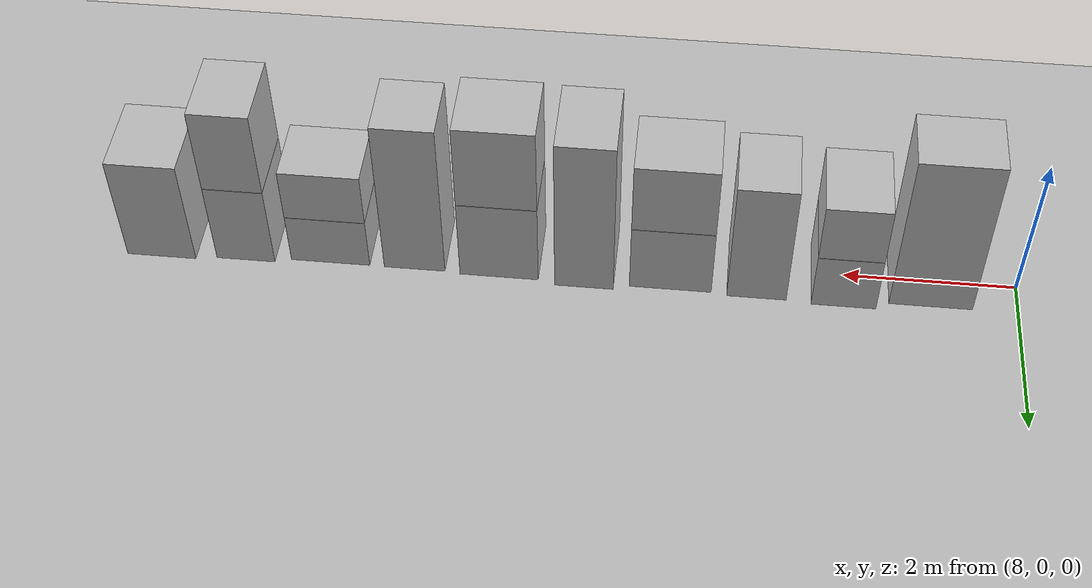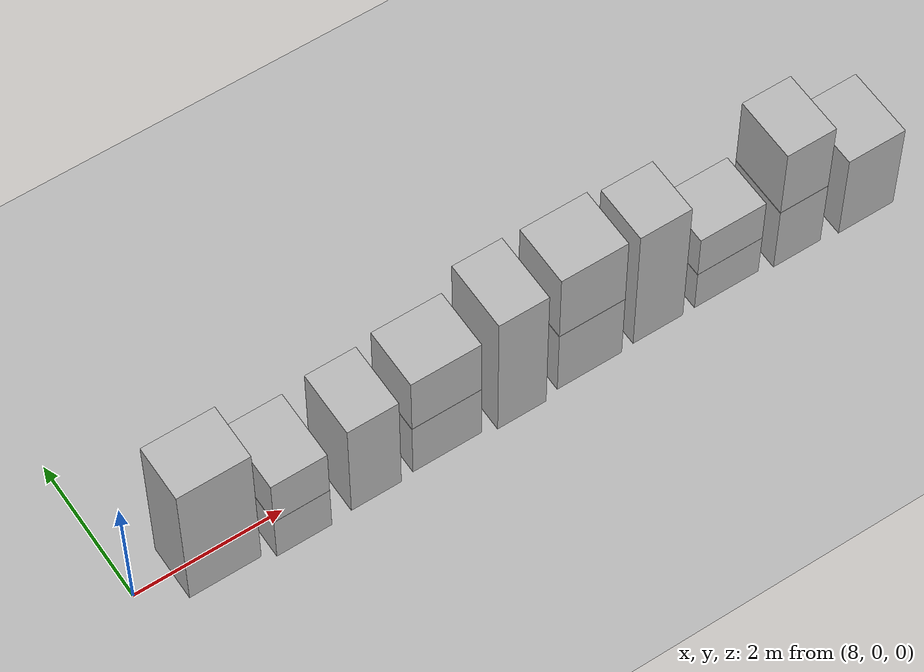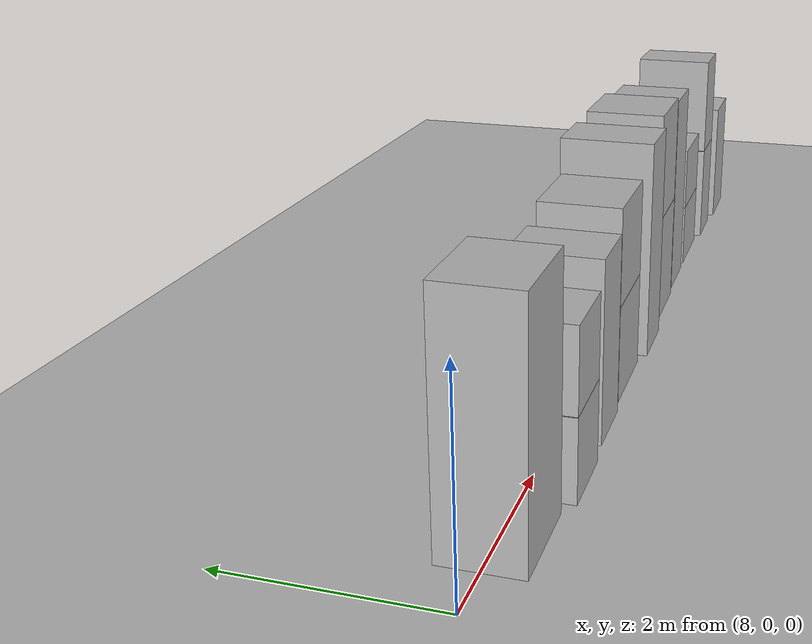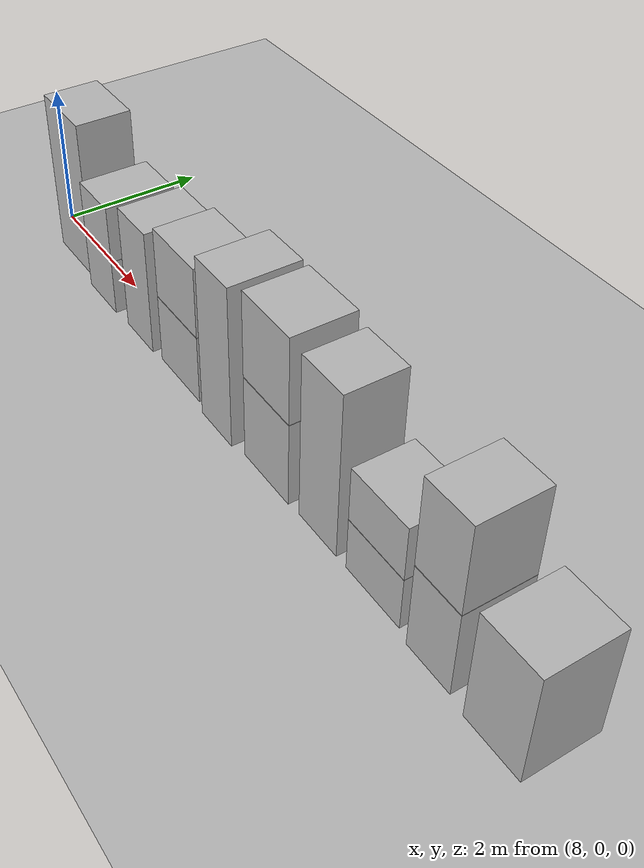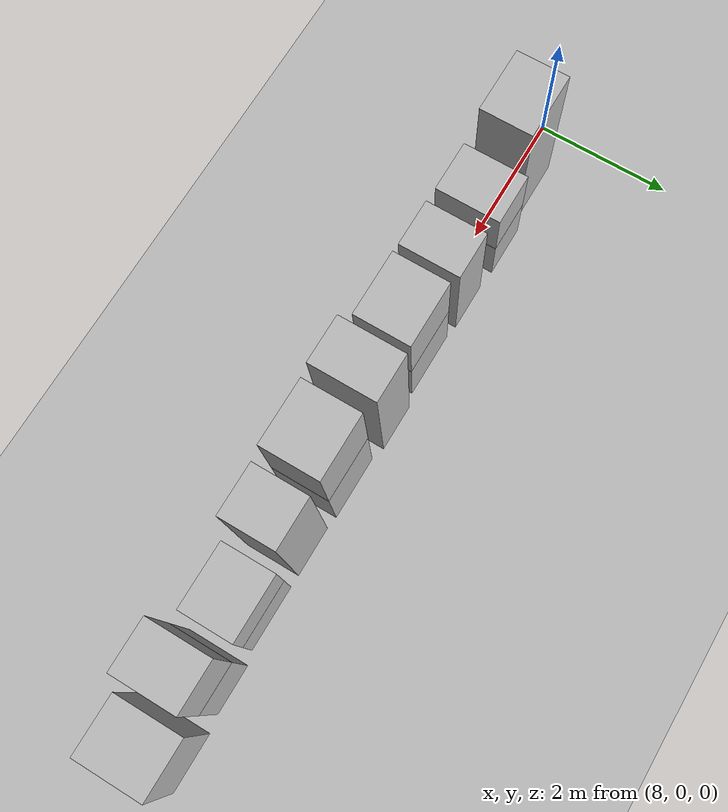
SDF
<sdf version="1.5">
 <world name="default">
  <model name="ground_plane">
   <static>true</static>
   <link name="link">
    <collision name="collision">
     <geometry><plane><normal>0 0 1</normal><size>250 250</size></plane></geometry>
     <surface><friction><ode><mu>1</mu><mu2>1</mu2></ode></friction></surface>
    </collision>
    <visual name="grass">
     <cast_shadows>false</cast_shadows>
     <geometry><mesh><uri>file://grass_plane/meshes/grass_plane.dae</uri></mesh></geometry>
    </visual>
   </link>
  </model>
  <model name="Cardboard_box_9">
   <link name="link_0">
    <pose>9 0 0 0 0 0</pose>
    <inertial>
     <mass>1</mass>
     <inertia>
      <ixx>0.166667</ixx>
      <ixy>0</ixy>
      <ixz>0</ixz>
      <iyy>0.166667</iyy>
      <iyz>0</iyz>
      <izz>0.166667</izz>
     </inertia>
    </inertial>
    <collision name="collision">
     <geometry>
      <mesh>
       <uri>model://Cardboard_box/meshes/cardboard_box.dae</uri>
       <scale>2.41177727035 1.9046140547 5.80288688245</scale>
      </mesh>
     </geometry>
    </collision>
    <visual name="visual">
     <geometry>
      <mesh>
       <uri>model://Cardboard_box/meshes/cardboard_box.dae</uri>
       <scale>2.41177727035 1.9046140547 5.80288688245</scale>
      </mesh>
     </geometry>
    </visual>
   </link>
   <static>1</static>
  </model>
  <model name="Cardboard_box_10">
   <link name="link_0">
    <pose>10 0 0 0 0 0</pose>
    <inertial>
     <mass>1</mass>
     <inertia>
      <ixx>0.166667</ixx>
      <ixy>0</ixy>
      <ixz>0</ixz>
      <iyy>0.166667</iyy>
      <iyz>0</iyz>
      <izz>0.166667</izz>
     </inertia>
    </inertial>
    <collision name="collision">
     <geometry>
      <mesh>
       <uri>model://Cardboard_box/meshes/cardboard_box.dae</uri>
       <scale>1.87477308353 2.39111994629 2.01380532399</scale>
      </mesh>
     </geometry>
    </collision>
    <visual name="visual">
     <geometry>
      <mesh>
       <uri>model://Cardboard_box/meshes/cardboard_box.dae</uri>
       <scale>1.87477308353 2.39111994629 2.01380532399</scale>
      </mesh>
     </geometry>
    </visual>
   </link>
   <static>1</static>
  </model>
  <model name="Cardboard_box_top_10">
   <link name="link_0">
    <pose>10 0 0.805522129596 0 0 0</pose>
    <inertial>
     <mass>1</mass>
     <inertia>
      <ixx>0.166667</ixx>
      <ixy>0</ixy>
      <ixz>0</ixz>
      <iyy>0.166667</iyy>
      <iyz>0</iyz>
      <izz>0.166667</izz>
     </inertia>
    </inertial>
    <collision name="collision">
     <geometry>
      <mesh>
       <uri>model://Cardboard_box/meshes/cardboard_box.dae</uri>
       <scale>1.87477308353 2.39111994629 2.01380532399</scale>
      </mesh>
     </geometry>
    </collision>
    <visual name="visual">
     <geometry>
      <mesh>
       <uri>model://Cardboard_box/meshes/cardboard_box.dae</uri>
       <scale>1.87477308353 2.39111994629 2.01380532399</scale>
      </mesh>
     </geometry>
    </visual>
   </link>
   <static>1</static>
  </model>
  <model name="Cardboard_box_11">
   <link name="link_0">
    <pose>11 0 0 0 0 0</pose>
    <inertial>
     <mass>1</mass>
     <inertia>
      <ixx>0.166667</ixx>
      <ixy>0</ixy>
      <ixz>0</ixz>
      <iyy>0.166667</iyy>
      <iyz>0</iyz>
      <izz>0.166667</izz>
     </inertia>
    </inertial>
    <collision name="collision">
     <geometry>
      <mesh>
       <uri>model://Cardboard_box/meshes/cardboard_box.dae</uri>
       <scale>1.72870701162 2.23671590152 4.48120869335</scale>
      </mesh>
     </geometry>
    </collision>
    <visual name="visual">
     <geometry>
      <mesh>
       <uri>model://Cardboard_box/meshes/cardboard_box.dae</uri>
       <scale>1.72870701162 2.23671590152 4.48120869335</scale>
      </mesh>
     </geometry>
    </visual>
   </link>
   <static>1</static>
  </model>
  <model name="Cardboard_box_12">
   <link name="link_0">
    <pose>12 0 0 0 0 0</pose>
    <inertial>
     <mass>1</mass>
     <inertia>
      <ixx>0.166667</ixx>
      <ixy>0</ixy>
      <ixz>0</ixz>
      <iyy>0.166667</iyy>
      <iyz>0</iyz>
      <izz>0.166667</izz>
     </inertia>
    </inertial>
    <collision name="collision">
     <geometry>
      <mesh>
       <uri>model://Cardboard_box/meshes/cardboard_box.dae</uri>
       <scale>2.39689287045 2.06885431104 2.46151055698</scale>
      </mesh>
     </geometry>
    </collision>
    <visual name="visual">
     <geometry>
      <mesh>
       <uri>model://Cardboard_box/meshes/cardboard_box.dae</uri>
       <scale>2.39689287045 2.06885431104 2.46151055698</scale>
      </mesh>
     </geometry>
    </visual>
   </link>
   <static>1</static>
  </model>
  <model name="Cardboard_box_top_12">
   <link name="link_0">
    <pose>12 0 0.984604222791 0 0 0</pose>
    <inertial>
     <mass>1</mass>
     <inertia>
      <ixx>0.166667</ixx>
      <ixy>0</ixy>
      <ixz>0</ixz>
      <iyy>0.166667</iyy>
      <iyz>0</iyz>
      <izz>0.166667</izz>
     </inertia>
    </inertial>
    <collision name="collision">
     <geometry>
      <mesh>
       <uri>model://Cardboard_box/meshes/cardboard_box.dae</uri>
       <scale>2.39689287045 2.06885431104 2.46151055698</scale>
      </mesh>
     </geometry>
    </collision>
    <visual name="visual">
     <geometry>
      <mesh>
       <uri>model://Cardboard_box/meshes/cardboard_box.dae</uri>
       <scale>2.39689287045 2.06885431104 2.46151055698</scale>
      </mesh>
     </geometry>
    </visual>
   </link>
   <static>1</static>
  </model>
  <model name="Cardboard_box_13">
   <link name="link_0">
    <pose>13 0 0 0 0 0</pose>
    <inertial>
     <mass>1</mass>
     <inertia>
      <ixx>0.166667</ixx>
      <ixy>0</ixy>
      <ixz>0</ixz>
      <iyy>0.166667</iyy>
      <iyz>0</iyz>
      <izz>0.166667</izz>
     </inertia>
    </inertial>
    <collision name="collision">
     <geometry>
      <mesh>
       <uri>model://Cardboard_box/meshes/cardboard_box.dae</uri>
       <scale>1.72068681394 2.40428362336 5.74207387843</scale>
      </mesh>
     </geometry>
    </collision>
    <visual name="visual">
     <geometry>
      <mesh>
       <uri>model://Cardboard_box/meshes/cardboard_box.dae</uri>
       <scale>1.72068681394 2.40428362336 5.74207387843</scale>
      </mesh>
     </geometry>
    </visual>
   </link>
   <static>1</static>
  </model>
  <model name="Cardboard_box_14">
   <link name="link_0">
    <pose>14 0 0 0 0 0</pose>
    <inertial>
     <mass>1</mass>
     <inertia>
      <ixx>0.166667</ixx>
      <ixy>0</ixy>
      <ixz>0</ixz>
      <iyy>0.166667</iyy>
      <iyz>0</iyz>
      <izz>0.166667</izz>
     </inertia>
    </inertial>
    <collision name="collision">
     <geometry>
      <mesh>
       <uri>model://Cardboard_box/meshes/cardboard_box.dae</uri>
       <scale>2.31721867758 2.10245198145 2.95686316914</scale>
      </mesh>
     </geometry>
    </collision>
    <visual name="visual">
     <geometry>
      <mesh>
       <uri>model://Cardboard_box/meshes/cardboard_box.dae</uri>
       <scale>2.31721867758 2.10245198145 2.95686316914</scale>
      </mesh>
     </geometry>
    </visual>
   </link>
   <static>1</static>
  </model>
  <model name="Cardboard_box_top_14">
   <link name="link_0">
    <pose>14 0 1.18274526766 0 0 0</pose>
    <inertial>
     <mass>1</mass>
     <inertia>
      <ixx>0.166667</ixx>
      <ixy>0</ixy>
      <ixz>0</ixz>
      <iyy>0.166667</iyy>
      <iyz>0</iyz>
      <izz>0.166667</izz>
     </inertia>
    </inertial>
    <collision name="collision">
     <geometry>
      <mesh>
       <uri>model://Cardboard_box/meshes/cardboard_box.dae</uri>
       <scale>2.31721867758 2.10245198145 2.95686316914</scale>
      </mesh>
     </geometry>
    </collision>
    <visual name="visual">
     <geometry>
      <mesh>
       <uri>model://Cardboard_box/meshes/cardboard_box.dae</uri>
       <scale>2.31721867758 2.10245198145 2.95686316914</scale>
      </mesh>
     </geometry>
    </visual>
   </link>
   <static>1</static>
  </model>
  <model name="Cardboard_box_15">
   <link name="link_0">
    <pose>15 0 0 0 0 0</pose>
    <inertial>
     <mass>1</mass>
     <inertia>
      <ixx>0.166667</ixx>
      <ixy>0</ixy>
      <ixz>0</ixz>
      <iyy>0.166667</iyy>
      <iyz>0</iyz>
      <izz>0.166667</izz>
     </inertia>
    </inertial>
    <collision name="collision">
     <geometry>
      <mesh>
       <uri>model://Cardboard_box/meshes/cardboard_box.dae</uri>
       <scale>1.81143180354 1.9829154614 5.72567080923</scale>
      </mesh>
     </geometry>
    </collision>
    <visual name="visual">
     <geometry>
      <mesh>
       <uri>model://Cardboard_box/meshes/cardboard_box.dae</uri>
       <scale>1.81143180354 1.9829154614 5.72567080923</scale>
      </mesh>
     </geometry>
    </visual>
   </link>
   <static>1</static>
  </model>
  <model name="Cardboard_box_16">
   <link name="link_0">
    <pose>16 0 0 0 0 0</pose>
    <inertial>
     <mass>1</mass>
     <inertia>
      <ixx>0.166667</ixx>
      <ixy>0</ixy>
      <ixz>0</ixz>
      <iyy>0.166667</iyy>
      <iyz>0</iyz>
      <izz>0.166667</izz>
     </inertia>
    </inertial>
    <collision name="collision">
     <geometry>
      <mesh>
       <uri>model://Cardboard_box/meshes/cardboard_box.dae</uri>
       <scale>2.35221261662 1.96231627657 1.82707683296</scale>
      </mesh>
     </geometry>
    </collision>
    <visual name="visual">
     <geometry>
      <mesh>
       <uri>model://Cardboard_box/meshes/cardboard_box.dae</uri>
       <scale>2.35221261662 1.96231627657 1.82707683296</scale>
      </mesh>
     </geometry>
    </visual>
   </link>
   <static>1</static>
  </model>
  <model name="Cardboard_box_top_16">
   <link name="link_0">
    <pose>16 0 0.730830733183 0 0 0</pose>
    <inertial>
     <mass>1</mass>
     <inertia>
      <ixx>0.166667</ixx>
      <ixy>0</ixy>
      <ixz>0</ixz>
      <iyy>0.166667</iyy>
      <iyz>0</iyz>
      <izz>0.166667</izz>
     </inertia>
    </inertial>
    <collision name="collision">
     <geometry>
      <mesh>
       <uri>model://Cardboard_box/meshes/cardboard_box.dae</uri>
       <scale>2.35221261662 1.96231627657 1.82707683296</scale>
      </mesh>
     </geometry>
    </collision>
    <visual name="visual">
     <geometry>
      <mesh>
       <uri>model://Cardboard_box/meshes/cardboard_box.dae</uri>
       <scale>2.35221261662 1.96231627657 1.82707683296</scale>
      </mesh>
     </geometry>
    </visual>
   </link>
   <static>1</static>
  </model>
  <model name="Cardboard_box_17">
   <link name="link_0">
    <pose>17 0 0 0 0 0</pose>
    <inertial>
     <mass>1</mass>
     <inertia>
      <ixx>0.166667</ixx>
      <ixy>0</ixy>
      <ixz>0</ixz>
      <iyy>0.166667</iyy>
      <iyz>0</iyz>
      <izz>0.166667</izz>
     </inertia>
    </inertial>
    <collision name="collision">
     <geometry>
      <mesh>
       <uri>model://Cardboard_box/meshes/cardboard_box.dae</uri>
       <scale>1.74772383043 2.24330012728 2.94271087227</scale>
      </mesh>
     </geometry>
    </collision>
    <visual name="visual">
     <geometry>
      <mesh>
       <uri>model://Cardboard_box/meshes/cardboard_box.dae</uri>
       <scale>1.74772383043 2.24330012728 2.94271087227</scale>
      </mesh>
     </geometry>
    </visual>
   </link>
   <static>1</static>
  </model>
  <model name="Cardboard_box_top_17">
   <link name="link_0">
    <pose>17 0 1.17708434891 0 0 0</pose>
    <inertial>
     <mass>1</mass>
     <inertia>
      <ixx>0.166667</ixx>
      <ixy>0</ixy>
      <ixz>0</ixz>
      <iyy>0.166667</iyy>
      <iyz>0</iyz>
      <izz>0.166667</izz>
     </inertia>
    </inertial>
    <collision name="collision">
     <geometry>
      <mesh>
       <uri>model://Cardboard_box/meshes/cardboard_box.dae</uri>
       <scale>1.74772383043 2.24330012728 2.94271087227</scale>
      </mesh>
     </geometry>
    </collision>
    <visual name="visual">
     <geometry>
      <mesh>
       <uri>model://Cardboard_box/meshes/cardboard_box.dae</uri>
       <scale>1.74772383043 2.24330012728 2.94271087227</scale>
      </mesh>
     </geometry>
    </visual>
   </link>
   <static>1</static>
  </model>
  <model name="Cardboard_box_18">
   <link name="link_0">
    <pose>18 0 0 0 0 0</pose>
    <inertial>
     <mass>1</mass>
     <inertia>
      <ixx>0.166667</ixx>
      <ixy>0</ixy>
      <ixz>0</ixz>
      <iyy>0.166667</iyy>
      <iyz>0</iyz>
      <izz>0.166667</izz>
     </inertia>
    </inertial>
    <collision name="collision">
     <geometry>
      <mesh>
       <uri>model://Cardboard_box/meshes/cardboard_box.dae</uri>
       <scale>2.06175359222 2.45269669923 3.8120988213</scale>
      </mesh>
     </geometry>
    </collision>
    <visual name="visual">
     <geometry>
      <mesh>
       <uri>model://Cardboard_box/meshes/cardboard_box.dae</uri>
       <scale>2.06175359222 2.45269669923 3.8120988213</scale>
      </mesh>
     </geometry>
    </visual>
   </link>
   <static>1</static>
  </model>
 </world>
</sdf>
